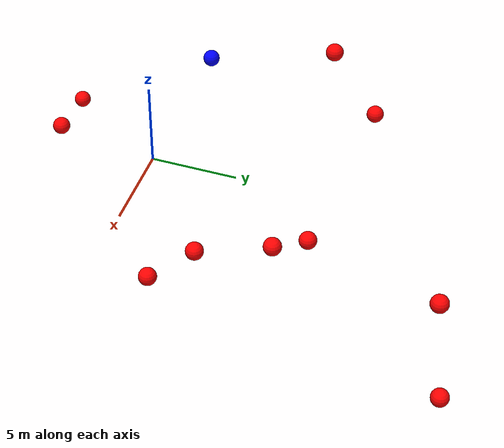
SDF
<?xml version="1.0" ?>
<sdf version="1.8">
    <world name="3d_world">
        <physics name="1ms" type="ode">
            <max_step_size>0.001</max_step_size>
            <real_time_factor>1.0</real_time_factor>
            <real_time_update_rate>1000.0</real_time_update_rate>
        </physics>
        <gravity>0 0 0</gravity>

        <plugin
            filename="gz-sim-physics-system"
            name="gz::sim::v8::systems::Physics">
        </plugin>
        <plugin
            filename="libignition-gazebo-user-commands-system.so"
            name="ignition::gazebo::systems::UserCommands">
        </plugin>
        <plugin
            filename="gz-sim-scene-broadcaster-system"
            name="gz::sim::systems::SceneBroadcaster">
        </plugin>
        <plugin
            filename="gz-sim-sensors-system"
            name="gz::sim::systems::Sensors">
            <render_engine>ogre2</render_engine>
        </plugin>

        <light type="directional" name="sun">
            <cast_shadows>true</cast_shadows>
            <pose>0 0 10 0 0 0</pose>
            <diffuse>0.8 0.8 0.8 1</diffuse>
            <specular>0.2 0.2 0.2 1</specular>
            <attenuation>
                <range>1000</range>
                <constant>0.9</constant>
                <linear>0.01</linear>
                <quadratic>0.001</quadratic>
            </attenuation>
            <direction>-0.5 0.1 -0.9</direction>
        </light>

        <!-- AGENTE -->
        <model name='agente' canonical_link='chassis'>
            <pose relative_to='world'>-10.0 0 0.0 0 0 0</pose>
            <link name='chassis'>
                <pose relative_to='__model__'>0.0 0 0.0 0 0 0</pose>
                <inertial>
                    <mass>1.14395</mass>
                    <inertia>
                        <ixx>0.095329</ixx>
                        <ixy>0</ixy>
                        <ixz>0</ixz>
                        <iyy>0.381317</iyy>
                        <iyz>0</iyz>
                        <izz>0.476646</izz>
                    </inertia>
                </inertial>
                <visual name='visual'>
                    <geometry>
                        <sphere>
                            <radius>0.5</radius>
                        </sphere>
                    </geometry>
                    <material>
                        <ambient>0.0 0.0 1.0 1</ambient>
                        <diffuse>0.0 0.0 1.0 1</diffuse>
                        <specular>0.0 0.0 1.0 1</specular>
                    </material>
                </visual>
                <collision name='collision'>
                    <geometry>
                        <sphere>
                            <radius>0.5</radius>
                        </sphere>
                    </geometry>
                </collision>
                <enable_gravity>false</enable_gravity>
            </link>

            <link name='lidar_link'>
                <pose relative_to='chassis'>0.0 0 0.1 0 0 0</pose>
                <inertial>
                    <mass>0.1</mass>
                    <inertia>
                        <ixx>0.000166667</ixx>
                        <iyy>0.000166667</iyy>
                        <izz>0.000166667</izz>
                    </inertia>
                </inertial>
                <collision name='collision'>
                    <geometry>
                        <cylinder>
                            <radius>0.05</radius>
                            <length>0.1</length>
                        </cylinder>
                    </geometry>
                </collision>
                <visual name='visual'>
                    <geometry>
                        <cylinder>
                            <radius>0.05</radius>
                            <length>0.1</length>
                        </cylinder>
                    </geometry>
                    <material>
                        <ambient>0.0 1.0 0.0 1</ambient>
                        <diffuse>0.0 1.0 0.0 1</diffuse>
                        <specular>0.0 1.0 0.0 1</specular>
                    </material>
                </visual>
                <sensor name="lidar" type="gpu_lidar">
                    <topic>scan</topic>
                    <update_rate>10</update_rate>
                    <lidar>
                        <scan>
                            <horizontal>
                                <samples>5000</samples>
                                <resolution>1</resolution>
                                <min_angle>-3.14159</min_angle>
                                <max_angle>3.14159</max_angle>
                            </horizontal>
                        </scan>
                        <range>
                            <min>0.1</min>
                            <max>10.0</max>
                            <resolution>0.01</resolution>
                        </range>
                    </lidar>
                    <visualize>true</visualize>
                    <always_on>true</always_on>
                    <update_rate>10</update_rate>
                    <pose_frame>lidar</pose_frame>
                </sensor>
                <enable_gravity>false</enable_gravity>
            </link>

            <joint name="lidar_joint" type="fixed">
                <parent>chassis</parent>
                <child>lidar_link</child>
            </joint>

            <plugin
                filename="ignition-gazebo-joint-state-publisher-system"
                name="ignition::gazebo::systems::JointStatePublisher">
            </plugin>
            <plugin
                filename="ignition-gazebo-odometry-publisher-system"
                name="ignition::gazebo::systems::OdometryPublisher">
                <dimensions>3</dimensions>
            </plugin>
            <plugin
                filename="ignition-gazebo-velocity-control-system"
                name="ignition::gazebo::systems::VelocityControl">
                <initial_linear>0.0 0 0</initial_linear>
                <initial_angular>0 0 0.0</initial_angular>
            </plugin>
            <plugin
                filename="libignition-gazebo-pose-publisher-system.so"
                name="ignition::gazebo::systems::PosePublisher">
                <topic>/agente/pose</topic>
                <frame_id>agente</frame_id>
                <update_rate>30</update_rate>
            </plugin>
        </model>

        <!-- OBSTACLE 1 -->
        <model name='obstacle_1' canonical_link='obstacle'>
            <static>false</static>
            <pose relative_to='world'>6.92 18.03 1.33 0 0 0</pose>
            <link name='obstacle'>
                <pose relative_to='__model__'>0.0 0 0.0 0 0 0</pose>
                <visual name='visual'>
                    <geometry>
                        <sphere>
                            <radius>0.50</radius>
                        </sphere>
                    </geometry>
                    <material>
                        <ambient>1.0 0.0 0.0 1</ambient>
                        <diffuse>1.0 0.0 0.0 1</diffuse>
                        <specular>1.0 0.0 0.0 1</specular>
                    </material>
                </visual>
                <collision name='collision'>
                    <geometry>
                        <sphere>
                            <radius>0.50</radius>
                        </sphere>
                    </geometry>
                </collision>
                <enable_gravity>false</enable_gravity>
            </link>

            <plugin
                filename="ignition-gazebo-velocity-control-system"
                name="ignition::gazebo::systems::VelocityControl">
                <initial_linear>-0.92 -1.77 -0.13</initial_linear>
                <initial_angular>0 0 0</initial_angular>
            </plugin>

            <plugin
                filename="ignition-gazebo-odometry-publisher-system"
                name="ignition::gazebo::systems::OdometryPublisher">
                <dimensions>3</dimensions>
            </plugin>
        </model>

        <!-- OBSTACLE 2 -->
        <model name='obstacle_2' canonical_link='obstacle'>
            <static>false</static>
            <pose relative_to='world'>8.36 2.96 -0.39 0 0 0</pose>
            <link name='obstacle'>
                <pose relative_to='__model__'>0.0 0 0.0 0 0 0</pose>
                <visual name='visual'>
                    <geometry>
                        <sphere>
                            <radius>0.50</radius>
                        </sphere>
                    </geometry>
                    <material>
                        <ambient>1.0 0.0 0.0 1</ambient>
                        <diffuse>1.0 0.0 0.0 1</diffuse>
                        <specular>1.0 0.0 0.0 1</specular>
                    </material>
                </visual>
                <collision name='collision'>
                    <geometry>
                        <sphere>
                            <radius>0.50</radius>
                        </sphere>
                    </geometry>
                </collision>
                <enable_gravity>false</enable_gravity>
            </link>

            <plugin
                filename="ignition-gazebo-velocity-control-system"
                name="ignition::gazebo::systems::VelocityControl">
                <initial_linear>-1.28 -0.61 0.08</initial_linear>
                <initial_angular>0 0 0</initial_angular>
            </plugin>

            <plugin
                filename="ignition-gazebo-odometry-publisher-system"
                name="ignition::gazebo::systems::OdometryPublisher">
                <dimensions>3</dimensions>
            </plugin>
        </model>

        <!-- OBSTACLE 3 -->
        <model name='obstacle_3' canonical_link='obstacle'>
            <static>false</static>
            <pose relative_to='world'>6.13 9.07 1.68 0 0 0</pose>
            <link name='obstacle'>
                <pose relative_to='__model__'>0.0 0 0.0 0 0 0</pose>
                <visual name='visual'>
                    <geometry>
                        <sphere>
                            <radius>0.50</radius>
                        </sphere>
                    </geometry>
                    <material>
                        <ambient>1.0 0.0 0.0 1</ambient>
                        <diffuse>1.0 0.0 0.0 1</diffuse>
                        <specular>1.0 0.0 0.0 1</specular>
                    </material>
                </visual>
                <collision name='collision'>
                    <geometry>
                        <sphere>
                            <radius>0.50</radius>
                        </sphere>
                    </geometry>
                </collision>
                <enable_gravity>false</enable_gravity>
            </link>

            <plugin
                filename="ignition-gazebo-velocity-control-system"
                name="ignition::gazebo::systems::VelocityControl">
                <initial_linear>-0.78 -1.81 -0.34</initial_linear>
                <initial_angular>0 0 0</initial_angular>
            </plugin>

            <plugin
                filename="ignition-gazebo-odometry-publisher-system"
                name="ignition::gazebo::systems::OdometryPublisher">
                <dimensions>3</dimensions>
            </plugin>
        </model>

        <!-- OBSTACLE 4 -->
        <model name='obstacle_4' canonical_link='obstacle'>
            <static>false</static>
            <pose relative_to='world'>-7.33 -7.82 -3.24 0 0 0</pose>
            <link name='obstacle'>
                <pose relative_to='__model__'>0.0 0 0.0 0 0 0</pose>
                <visual name='visual'>
                    <geometry>
                        <sphere>
                            <radius>0.50</radius>
                        </sphere>
                    </geometry>
                    <material>
                        <ambient>1.0 0.0 0.0 1</ambient>
                        <diffuse>1.0 0.0 0.0 1</diffuse>
                        <specular>1.0 0.0 0.0 1</specular>
                    </material>
                </visual>
                <collision name='collision'>
                    <geometry>
                        <sphere>
                            <radius>0.50</radius>
                        </sphere>
                    </geometry>
                </collision>
                <enable_gravity>false</enable_gravity>
            </link>

            <plugin
                filename="ignition-gazebo-velocity-control-system"
                name="ignition::gazebo::systems::VelocityControl">
                <initial_linear>1.68 1.00 0.41</initial_linear>
                <initial_angular>0 0 0</initial_angular>
            </plugin>

            <plugin
                filename="ignition-gazebo-odometry-publisher-system"
                name="ignition::gazebo::systems::OdometryPublisher">
                <dimensions>3</dimensions>
            </plugin>
        </model>

        <!-- OBSTACLE 5 -->
        <model name='obstacle_5' canonical_link='obstacle'>
            <static>false</static>
            <pose relative_to='world'>-1.62 -6.46 -0.56 0 0 0</pose>
            <link name='obstacle'>
                <pose relative_to='__model__'>0.0 0 0.0 0 0 0</pose>
                <visual name='visual'>
                    <geometry>
                        <sphere>
                            <radius>0.50</radius>
                        </sphere>
                    </geometry>
                    <material>
                        <ambient>1.0 0.0 0.0 1</ambient>
                        <diffuse>1.0 0.0 0.0 1</diffuse>
                        <specular>1.0 0.0 0.0 1</specular>
                    </material>
                </visual>
                <collision name='collision'>
                    <geometry>
                        <sphere>
                            <radius>0.50</radius>
                        </sphere>
                    </geometry>
                </collision>
                <enable_gravity>false</enable_gravity>
            </link>

            <plugin
                filename="ignition-gazebo-velocity-control-system"
                name="ignition::gazebo::systems::VelocityControl">
                <initial_linear>0.06 1.88 0.16</initial_linear>
                <initial_angular>0 0 0</initial_angular>
            </plugin>

            <plugin
                filename="ignition-gazebo-odometry-publisher-system"
                name="ignition::gazebo::systems::OdometryPublisher">
                <dimensions>3</dimensions>
            </plugin>
        </model>

        <!-- OBSTACLE 6 -->
        <model name='obstacle_6' canonical_link='obstacle'>
            <static>false</static>
            <pose relative_to='world'>-6.60 8.64 4.93 0 0 0</pose>
            <link name='obstacle'>
                <pose relative_to='__model__'>0.0 0 0.0 0 0 0</pose>
                <visual name='visual'>
                    <geometry>
                        <sphere>
                            <radius>0.50</radius>
                        </sphere>
                    </geometry>
                    <material>
                        <ambient>1.0 0.0 0.0 1</ambient>
                        <diffuse>1.0 0.0 0.0 1</diffuse>
                        <specular>1.0 0.0 0.0 1</specular>
                    </material>
                </visual>
                <collision name='collision'>
                    <geometry>
                        <sphere>
                            <radius>0.50</radius>
                        </sphere>
                    </geometry>
                </collision>
                <enable_gravity>false</enable_gravity>
            </link>

            <plugin
                filename="ignition-gazebo-velocity-control-system"
                name="ignition::gazebo::systems::VelocityControl">
                <initial_linear>1.41 -1.23 -0.70</initial_linear>
                <initial_angular>0 0 0</initial_angular>
            </plugin>

            <plugin
                filename="ignition-gazebo-odometry-publisher-system"
                name="ignition::gazebo::systems::OdometryPublisher">
                <dimensions>3</dimensions>
            </plugin>
        </model>

        <!-- OBSTACLE 7 -->
        <model name='obstacle_7' canonical_link='obstacle'>
            <static>false</static>
            <pose relative_to='world'>-7.93 11.01 0.03 0 0 0</pose>
            <link name='obstacle'>
                <pose relative_to='__model__'>0.0 0 0.0 0 0 0</pose>
                <visual name='visual'>
                    <geometry>
                        <sphere>
                            <radius>0.50</radius>
                        </sphere>
                    </geometry>
                    <material>
                        <ambient>1.0 0.0 0.0 1</ambient>
                        <diffuse>1.0 0.0 0.0 1</diffuse>
                        <specular>1.0 0.0 0.0 1</specular>
                    </material>
                </visual>
                <collision name='collision'>
                    <geometry>
                        <sphere>
                            <radius>0.50</radius>
                        </sphere>
                    </geometry>
                </collision>
                <enable_gravity>false</enable_gravity>
            </link>

            <plugin
                filename="ignition-gazebo-velocity-control-system"
                name="ignition::gazebo::systems::VelocityControl">
                <initial_linear>1.30 -1.52 -0.00</initial_linear>
                <initial_angular>0 0 0</initial_angular>
            </plugin>

            <plugin
                filename="ignition-gazebo-odometry-publisher-system"
                name="ignition::gazebo::systems::OdometryPublisher">
                <dimensions>3</dimensions>
            </plugin>
        </model>

        <!-- OBSTACLE 8 -->
        <model name='obstacle_8' canonical_link='obstacle'>
            <static>false</static>
            <pose relative_to='world'>3.40 10.23 -0.07 0 0 0</pose>
            <link name='obstacle'>
                <pose relative_to='__model__'>0.0 0 0.0 0 0 0</pose>
                <visual name='visual'>
                    <geometry>
                        <sphere>
                            <radius>0.50</radius>
                        </sphere>
                    </geometry>
                    <material>
                        <ambient>1.0 0.0 0.0 1</ambient>
                        <diffuse>1.0 0.0 0.0 1</diffuse>
                        <specular>1.0 0.0 0.0 1</specular>
                    </material>
                </visual>
                <collision name='collision'>
                    <geometry>
                        <sphere>
                            <radius>0.50</radius>
                        </sphere>
                    </geometry>
                </collision>
                <enable_gravity>false</enable_gravity>
            </link>

            <plugin
                filename="ignition-gazebo-velocity-control-system"
                name="ignition::gazebo::systems::VelocityControl">
                <initial_linear>-1.01 -1.73 0.01</initial_linear>
                <initial_angular>0 0 0</initial_angular>
            </plugin>

            <plugin
                filename="ignition-gazebo-odometry-publisher-system"
                name="ignition::gazebo::systems::OdometryPublisher">
                <dimensions>3</dimensions>
            </plugin>
        </model>

        <!-- OBSTACLE 9 -->
        <model name='obstacle_9' canonical_link='obstacle'>
            <static>false</static>
            <pose relative_to='world'>9.40 19.02 -2.72 0 0 0</pose>
            <link name='obstacle'>
                <pose relative_to='__model__'>0.0 0 0.0 0 0 0</pose>
                <visual name='visual'>
                    <geometry>
                        <sphere>
                            <radius>0.50</radius>
                        </sphere>
                    </geometry>
                    <material>
                        <ambient>1.0 0.0 0.0 1</ambient>
                        <diffuse>1.0 0.0 0.0 1</diffuse>
                        <specular>1.0 0.0 0.0 1</specular>
                    </material>
                </visual>
                <collision name='collision'>
                    <geometry>
                        <sphere>
                            <radius>0.50</radius>
                        </sphere>
                    </geometry>
                </collision>
                <enable_gravity>false</enable_gravity>
            </link>

            <plugin
                filename="ignition-gazebo-velocity-control-system"
                name="ignition::gazebo::systems::VelocityControl">
                <initial_linear>-1.12 -1.64 0.23</initial_linear>
                <initial_angular>0 0 0</initial_angular>
            </plugin>

            <plugin
                filename="ignition-gazebo-odometry-publisher-system"
                name="ignition::gazebo::systems::OdometryPublisher">
                <dimensions>3</dimensions>
            </plugin>
        </model>

        <!-- OBSTACLE 10 -->
        <model name='obstacle_10' canonical_link='obstacle'>
            <static>false</static>
            <pose relative_to='world'>6.71 4.99 0.58 0 0 0</pose>
            <link name='obstacle'>
                <pose relative_to='__model__'>0.0 0 0.0 0 0 0</pose>
                <visual name='visual'>
                    <geometry>
                        <sphere>
                            <radius>0.50</radius>
                        </sphere>
                    </geometry>
                    <material>
                        <ambient>1.0 0.0 0.0 1</ambient>
                        <diffuse>1.0 0.0 0.0 1</diffuse>
                        <specular>1.0 0.0 0.0 1</specular>
                    </material>
                </visual>
                <collision name='collision'>
                    <geometry>
                        <sphere>
                            <radius>0.50</radius>
                        </sphere>
                    </geometry>
                </collision>
                <enable_gravity>false</enable_gravity>
            </link>

            <plugin
                filename="ignition-gazebo-velocity-control-system"
                name="ignition::gazebo::systems::VelocityControl">
                <initial_linear>-1.69 -1.07 -0.12</initial_linear>
                <initial_angular>0 0 0</initial_angular>
            </plugin>

            <plugin
                filename="ignition-gazebo-odometry-publisher-system"
                name="ignition::gazebo::systems::OdometryPublisher">
                <dimensions>3</dimensions>
            </plugin>
        </model>

    </world>
</sdf>
